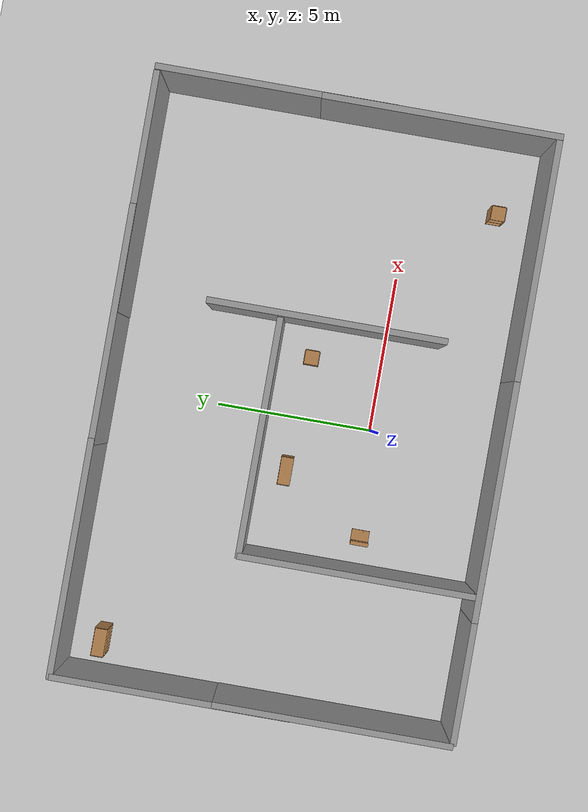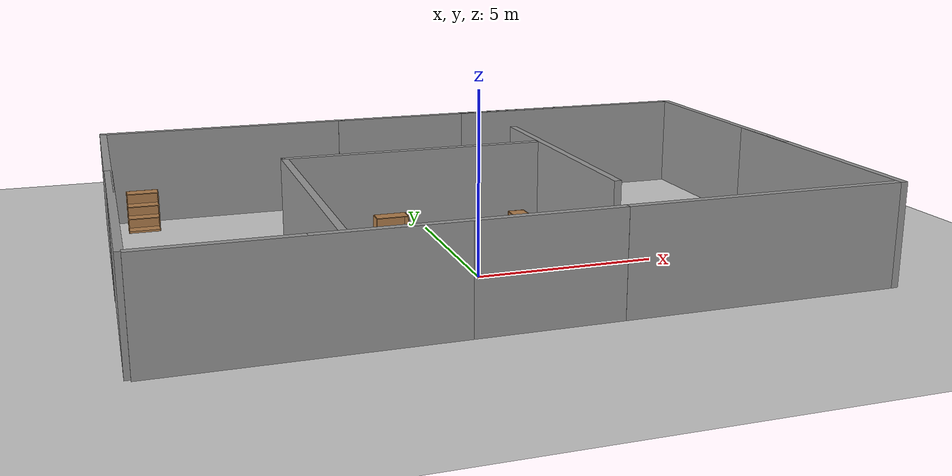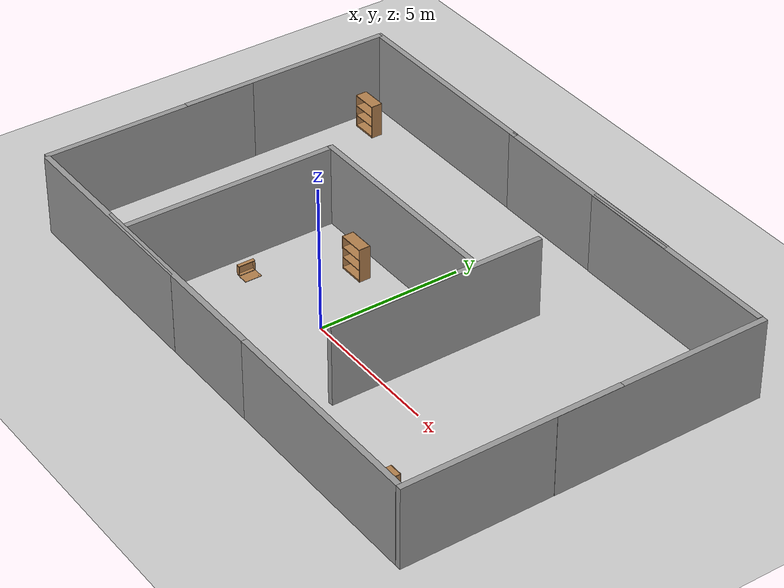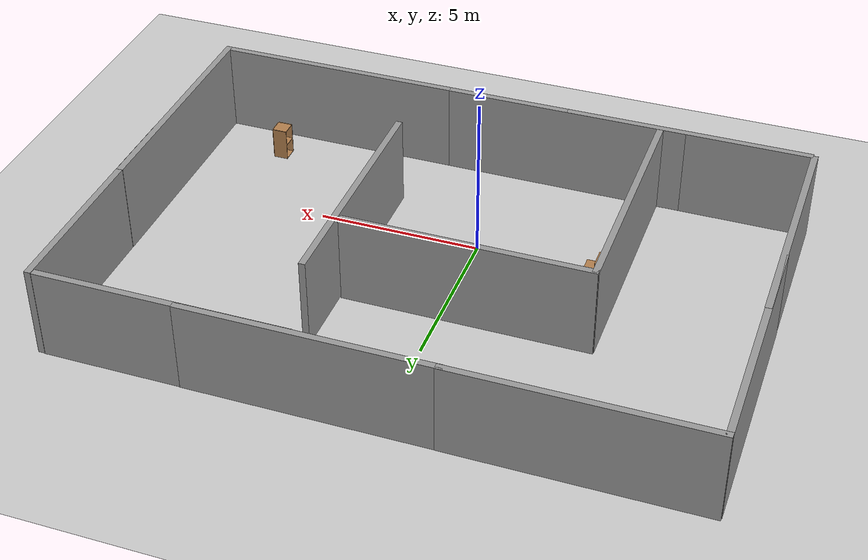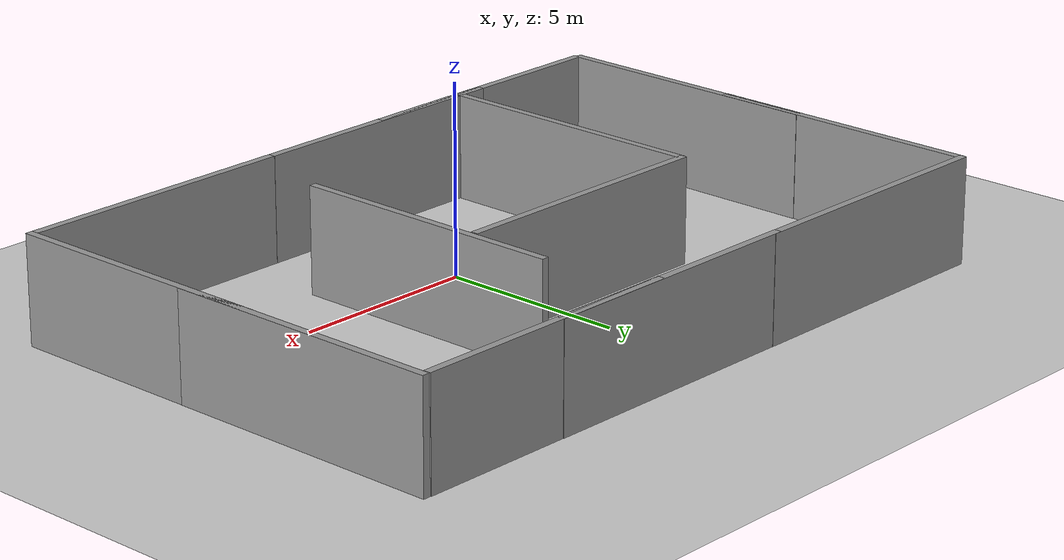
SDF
<sdf version="1.6">
 <world name="default">
  <light name="sun" type="directional">
   <pose>0 0 10 0 -0 0</pose>
   <diffuse>0.8 0.8 0.8 1</diffuse>
   <specular>0.1 0.1 0.1 1</specular>
   <attenuation>
    <range>1000</range>
    <constant>0.9</constant>
    <linear>0.01</linear>
    <quadratic>0.001</quadratic>
   </attenuation>
   <direction>-0.5 0.5 -1</direction>
  </light>
  <model name="ground_plane">
   <static>1</static>
   <link name="link">
    <collision name="collision">
     <geometry><plane><normal>0 0 1</normal><size>100 100</size></plane></geometry>
     <surface><friction><ode><mu>100</mu><mu2>50</mu2></ode></friction></surface>
    </collision>
    <visual name="visual">
     <cast_shadows>0</cast_shadows>
     <geometry><plane><normal>0 0 1</normal><size>100 100</size></plane></geometry>
     <material>
      <script><uri>file://media/materials/scripts/gazebo.material</uri><name>Gazebo/Grey</name></script>
     </material>
    </visual>
   </link>
  </model>
  <gravity>0 0 -9.8</gravity>
  <magnetic_field>6e-06 2.3e-05 -4.2e-05</magnetic_field>
  <atmosphere type="adiabatic"/>
  <physics name="default_physics" default="0" type="ode">
   <max_step_size>0.001</max_step_size>
   <real_time_factor>1</real_time_factor>
   <real_time_update_rate>1000</real_time_update_rate>
  </physics>
  <scene><ambient>0.4 0.4 0.4 1</ambient><background>0.7 0.7 0.7 1</background><shadows>1</shadows></scene>
  <spherical_coordinates>
   <surface_model>EARTH_WGS84</surface_model>
   <latitude_deg>0</latitude_deg>
   <longitude_deg>0</longitude_deg>
   <elevation>0</elevation>
   <heading_deg>0</heading_deg>
  </spherical_coordinates>
  <model name="grey_wall">
   <static>1</static>
   <link name="link">
    <pose>0 0 1.4 0 -0 0</pose>
    <collision name="collision"><geometry><box><size>7.5 0.2 2.8</size></box></geometry></collision>
    <visual name="visual">
     <cast_shadows>0</cast_shadows>
     <geometry><box><size>7.5 0.2 2.8</size></box></geometry>
     <material>
      <script>
       <uri>model://grey_wall/materials/scripts</uri>
       <uri>model://grey_wall/materials/textures</uri>
       <name>vrc/grey_wall</name>
      </script>
     </material>
    </visual>
   </link>
   <pose>-1.47406 -4.04233 0 0 -0 0</pose>
  </model>
  <model name="grey_wall_clone">
   <static>1</static>
   <link name="link">
    <pose>0 0 1.4 0 -0 0</pose>
    <collision name="collision"><geometry><box><size>7.5 0.2 2.8</size></box></geometry></collision>
    <visual name="visual">
     <cast_shadows>0</cast_shadows>
     <geometry><box><size>7.5 0.2 2.8</size></box></geometry>
     <material>
      <script>
       <uri>model://grey_wall/materials/scripts</uri>
       <uri>model://grey_wall/materials/textures</uri>
       <name>vrc/grey_wall</name>
      </script>
     </material>
    </visual>
   </link>
   <pose>6.02688 -4.04394 0 0 -0 0</pose>
  </model>
  <model name="grey_wall_clone_0">
   <static>1</static>
   <link name="link">
    <pose>0 0 1.4 0 -0 0</pose>
    <collision name="collision"><geometry><box><size>7.5 0.2 2.8</size></box></geometry></collision>
    <visual name="visual">
     <cast_shadows>0</cast_shadows>
     <geometry><box><size>7.5 0.2 2.8</size></box></geometry>
     <material>
      <script>
       <uri>model://grey_wall/materials/scripts</uri>
       <uri>model://grey_wall/materials/textures</uri>
       <name>vrc/grey_wall</name>
      </script>
     </material>
    </visual>
   </link>
   <pose>9.87247 -0.390935 0 0 -0 1.57226</pose>
  </model>
  <model name="grey_wall_clone_0_clone">
   <static>1</static>
   <link name="link">
    <pose>0 0 1.4 0 -0 0</pose>
    <collision name="collision"><geometry><box><size>7.5 0.2 2.8</size></box></geometry></collision>
    <visual name="visual">
     <cast_shadows>0</cast_shadows>
     <geometry><box><size>7.5 0.2 2.8</size></box></geometry>
     <material>
      <script>
       <uri>model://grey_wall/materials/scripts</uri>
       <uri>model://grey_wall/materials/textures</uri>
       <name>vrc/grey_wall</name>
      </script>
     </material>
    </visual>
   </link>
   <pose>-9.0691 -0.310244 0 0 -0 1.57226</pose>
  </model>
  <model name="grey_wall_clone_1">
   <static>1</static>
   <link name="link">
    <pose>0 0 1.4 0 -0 0</pose>
    <collision name="collision"><geometry><box><size>7.5 0.2 2.8</size></box></geometry></collision>
    <visual name="visual">
     <cast_shadows>0</cast_shadows>
     <geometry><box><size>7.5 0.2 2.8</size></box></geometry>
     <material>
      <script>
       <uri>model://grey_wall/materials/scripts</uri>
       <uri>model://grey_wall/materials/textures</uri>
       <name>vrc/grey_wall</name>
      </script>
     </material>
    </visual>
   </link>
   <pose>-5.27065 -4.04328 0 0 -0 0</pose>
  </model>
  <model name="grey_wall_clone_0_clone_clone">
   <static>1</static>
   <link name="link">
    <pose>0 0 1.4 0 -0 0</pose>
    <collision name="collision"><geometry><box><size>7.5 0.2 2.8</size></box></geometry></collision>
    <visual name="visual">
     <cast_shadows>0</cast_shadows>
     <geometry><box><size>7.5 0.2 2.8</size></box></geometry>
     <material>
      <script>
       <uri>model://grey_wall/materials/scripts</uri>
       <uri>model://grey_wall/materials/textures</uri>
       <name>vrc/grey_wall</name>
      </script>
     </material>
    </visual>
   </link>
   <pose>-9.08616 4.7458 0 0 -0 1.57226</pose>
  </model>
  <model name="grey_wall_clone_1_clone">
   <static>1</static>
   <link name="link">
    <pose>0 0 1.4 0 -0 0</pose>
    <collision name="collision"><geometry><box><size>7.5 0.2 2.8</size></box></geometry></collision>
    <visual name="visual">
     <cast_shadows>0</cast_shadows>
     <geometry><box><size>7.5 0.2 2.8</size></box></geometry>
     <material>
      <script>
       <uri>model://grey_wall/materials/scripts</uri>
       <uri>model://grey_wall/materials/textures</uri>
       <name>vrc/grey_wall</name>
      </script>
     </material>
    </visual>
   </link>
   <pose>-5.42961 8.47364 0 0 -0 0</pose>
  </model>
  <model name="grey_wall_clone_1_clone_0">
   <static>1</static>
   <link name="link">
    <pose>0 0 1.4 0 -0 0</pose>
    <collision name="collision"><geometry><box><size>7.5 0.2 2.8</size></box></geometry></collision>
    <visual name="visual">
     <cast_shadows>0</cast_shadows>
     <geometry><box><size>7.5 0.2 2.8</size></box></geometry>
     <material>
      <script>
       <uri>model://grey_wall/materials/scripts</uri>
       <uri>model://grey_wall/materials/textures</uri>
       <name>vrc/grey_wall</name>
      </script>
     </material>
    </visual>
   </link>
   <pose>1.8601 8.46546 0 0 -0 0</pose>
  </model>
  <model name="grey_wall_clone_1_clone_1">
   <static>1</static>
   <link name="link">
    <pose>0 0 1.4 0 -0 0</pose>
    <collision name="collision"><geometry><box><size>7.5 0.2 2.8</size></box></geometry></collision>
    <visual name="visual">
     <cast_shadows>0</cast_shadows>
     <geometry><box><size>7.5 0.2 2.8</size></box></geometry>
     <material>
      <script>
       <uri>model://grey_wall/materials/scripts</uri>
       <uri>model://grey_wall/materials/textures</uri>
       <name>vrc/grey_wall</name>
      </script>
     </material>
    </visual>
   </link>
   <pose>5.99942 8.4539 0 0 -0 0</pose>
  </model>
  <model name="grey_wall_clone_0_clone_0">
   <static>1</static>
   <link name="link">
    <pose>0 0 1.4 0 -0 0</pose>
    <collision name="collision"><geometry><box><size>7.5 0.2 2.8</size></box></geometry></collision>
    <visual name="visual">
     <cast_shadows>0</cast_shadows>
     <geometry><box><size>7.5 0.2 2.8</size></box></geometry>
     <material>
      <script>
       <uri>model://grey_wall/materials/scripts</uri>
       <uri>model://grey_wall/materials/textures</uri>
       <name>vrc/grey_wall</name>
      </script>
     </material>
    </visual>
   </link>
   <pose>9.8712 4.79059 0 0 -0 1.57226</pose>
  </model>
  <model name="grey_wall_clone_0_clone_1">
   <static>1</static>
   <link name="link">
    <pose>0 0 1.4 0 -0 0</pose>
    <collision name="collision"><geometry><box><size>7.5 0.2 2.8</size></box></geometry></collision>
    <visual name="visual">
     <cast_shadows>0</cast_shadows>
     <geometry><box><size>7.5 0.2 2.8</size></box></geometry>
     <material>
      <script>
       <uri>model://grey_wall/materials/scripts</uri>
       <uri>model://grey_wall/materials/textures</uri>
       <name>vrc/grey_wall</name>
      </script>
     </material>
    </visual>
   </link>
   <pose>-4.44725 -0.277067 0 0 -0 1.57226</pose>
  </model>
  <model name="grey_wall_clone_1_clone_clone">
   <static>1</static>
   <link name="link">
    <pose>0 0 1.4 0 -0 0</pose>
    <collision name="collision"><geometry><box><size>7.5 0.2 2.8</size></box></geometry></collision>
    <visual name="visual">
     <cast_shadows>0</cast_shadows>
     <geometry><box><size>7.5 0.2 2.8</size></box></geometry>
     <material>
      <script>
       <uri>model://grey_wall/materials/scripts</uri>
       <uri>model://grey_wall/materials/textures</uri>
       <name>vrc/grey_wall</name>
      </script>
     </material>
    </visual>
   </link>
   <pose>-0.783426 3.42654 0 0 -0 0</pose>
  </model>
  <model name="grey_wall_clone_0_clone_clone_0">
   <static>1</static>
   <link name="link">
    <pose>0 0 1.4 0 -0 0</pose>
    <collision name="collision"><geometry><box><size>7.5 0.2 2.8</size></box></geometry></collision>
    <visual name="visual">
     <cast_shadows>0</cast_shadows>
     <geometry><box><size>7.5 0.2 2.8</size></box></geometry>
     <material>
      <script>
       <uri>model://grey_wall/materials/scripts</uri>
       <uri>model://grey_wall/materials/textures</uri>
       <name>vrc/grey_wall</name>
      </script>
     </material>
    </visual>
   </link>
   <pose>3.10508 2.00183 0 0 -0 1.57226</pose>
  </model>
  <model name="cabinet">
   <static>1</static>
   <link name="cabinet_bottom_plate">
    <inertial>
     <pose>0 0 -1 0 -0 0</pose>
     <inertia><ixx>2.05</ixx><ixy>0</ixy><ixz>0</ixz><iyy>2.05</iyy><iyz>0</iyz><izz>2.05</izz></inertia>
     <mass>25</mass>
    </inertial>
    <collision name="cabinet_bottom_plate_geom">
     <pose>0 0 0.01 0 -0 0</pose>
     <geometry><box><size>0.45 0.45 0.02</size></box></geometry>
    </collision>
    <visual name="cabinet_bottom_plate_geom_visual">
     <pose>0 0 0.01 0 -0 0</pose>
     <geometry><box><size>0.45 0.45 0.02</size></box></geometry>
     <material>
      <script><uri>file://media/materials/scripts/gazebo.material</uri><name>Gazebo/Wood</name></script>
     </material>
    </visual>
    <collision name="cabinet_bottom_plate_geom_cabinet_back_plate">
     <pose>0.235 0 0.51 0 -0 0</pose>
     <geometry><box><size>0.02 0.45 1.02</size></box></geometry>
    </collision>
    <visual name="cabinet_bottom_plate_geom_cabinet_back_plate_visual">
     <pose>0.235 0 0.51 0 -0 0</pose>
     <geometry><box><size>0.02 0.45 1.02</size></box></geometry>
     <material>
      <script><uri>file://media/materials/scripts/gazebo.material</uri><name>Gazebo/Wood</name></script>
     </material>
    </visual>
    <collision name="cabinet_bottom_plate_geom_cabinet_left_plate">
     <pose>0 0.235 0.51 0 -0 0</pose>
     <geometry><box><size>0.45 0.02 1.02</size></box></geometry>
    </collision>
    <visual name="cabinet_bottom_plate_geom_cabinet_left_plate_visual">
     <pose>0 0.235 0.51 0 -0 0</pose>
     <geometry><box><size>0.45 0.02 1.02</size></box></geometry>
     <material>
      <script><uri>file://media/materials/scripts/gazebo.material</uri><name>Gazebo/Wood</name></script>
     </material>
    </visual>
    <collision name="cabinet_bottom_plate_geom_cabinet_middle_plate">
     <pose>0 0 0.51 0 -0 0</pose>
     <geometry><box><size>0.45 0.45 0.02</size></box></geometry>
    </collision>
    <visual name="cabinet_bottom_plate_geom_cabinet_middle_plate_visual">
     <pose>0 0 0.51 0 -0 0</pose>
     <geometry><box><size>0.45 0.45 0.02</size></box></geometry>
     <material>
      <script><uri>file://media/materials/scripts/gazebo.material</uri><name>Gazebo/Wood</name></script>
     </material>
    </visual>
    <collision name="cabinet_bottom_plate_geom_cabinet_right_plate">
     <pose>0 -0.235 0.51 0 -0 0</pose>
     <geometry><box><size>0.45 0.02 1.02</size></box></geometry>
    </collision>
    <visual name="cabinet_bottom_plate_geom_cabinet_right_plate_visual">
     <pose>0 -0.235 0.51 0 -0 0</pose>
     <geometry><box><size>0.45 0.02 1.02</size></box></geometry>
     <material>
      <script><uri>file://media/materials/scripts/gazebo.material</uri><name>Gazebo/Wood</name></script>
     </material>
    </visual>
    <collision name="cabinet_bottom_plate_geom_cabinet_top_plate">
     <pose>0 0 1.01 0 -0 0</pose>
     <geometry><box><size>0.45 0.45 0.02</size></box></geometry>
    </collision>
    <visual name="cabinet_bottom_plate_geom_cabinet_top_plate_visual">
     <pose>0 0 1.01 0 -0 0</pose>
     <geometry><box><size>0.45 0.45 0.02</size></box></geometry>
     <material>
      <script><uri>file://media/materials/scripts/gazebo.material</uri><name>Gazebo/Wood</name></script>
     </material>
    </visual>
   </link>
   <pose>1.97716 2.27018 0 0 -0 0</pose>
  </model>
  <model name="wooden_case">
   <link name="base">
    <pose>0 0 0.024 0 -0 0</pose>
    <inertial>
     <pose>-0.022184 0 0.171592 0 -0 0</pose>
     <mass>3.96264</mass>
     <inertia>
      <ixx>0.213536</ixx>
      <ixy>0</ixy>
      <ixz>0.000779377</ixz>
      <iyy>0.0708943</iyy>
      <iyz>0</iyz>
      <izz>0.154604</izz>
     </inertia>
    </inertial>
    <collision name="collision_back">
     <pose>-0.053975 0 0.1778 0 -0 0</pose>
     <geometry><box><size>0.01905 0.5461 0.3175</size></box></geometry>
     <surface>
      <contact>
       <poissons_ratio>0.347</poissons_ratio>
       <elastic_modulus>8.8e+09</elastic_modulus>
       <ode><kp>100000</kp><kd>100</kd><max_vel>100</max_vel><min_depth>0.001</min_depth></ode>
      </contact>
      <friction>
       <torsional>
        <coefficient>1</coefficient>
        <use_patch_radius>0</use_patch_radius>
        <surface_radius>0.01</surface_radius>
       </torsional>
      </friction>
     </surface>
    </collision>
    <visual name="visual_back">
     <pose>-0.053975 0 0.1778 0 -0 0</pose>
     <geometry><box><size>0.01905 0.5461 0.3175</size></box></geometry>
     <material>
      <script><uri>file://media/materials/scripts/gazebo.material</uri><name>Gazebo/Wood</name></script>
     </material>
    </visual>
    <collision name="collision_bottom">
     <pose>0 0 0.009525 0 -0 0</pose>
     <geometry><box><size>0.127 0.5842 0.01905</size></box></geometry>
     <surface>
      <contact>
       <poissons_ratio>0.347</poissons_ratio>
       <elastic_modulus>8.8e+09</elastic_modulus>
       <ode><kp>100000</kp><kd>100</kd><max_vel>100</max_vel><min_depth>0.001</min_depth></ode>
      </contact>
      <friction>
       <torsional>
        <coefficient>1</coefficient>
        <use_patch_radius>0</use_patch_radius>
        <surface_radius>0.01</surface_radius>
       </torsional>
      </friction>
     </surface>
    </collision>
    <visual name="visual_bottom">
     <pose>0 0 0.009525 0 -0 0</pose>
     <geometry><box><size>0.127 0.5842 0.01905</size></box></geometry>
     <material>
      <script><uri>file://media/materials/scripts/gazebo.material</uri><name>Gazebo/Wood</name></script>
     </material>
    </visual>
    <collision name="collision_top">
     <pose>0 0 0.346075 0 -0 0</pose>
     <geometry><box><size>0.127 0.5842 0.01905</size></box></geometry>
     <surface>
      <contact>
       <poissons_ratio>0.347</poissons_ratio>
       <elastic_modulus>8.8e+09</elastic_modulus>
       <ode><kp>100000</kp><kd>100</kd><max_vel>100</max_vel><min_depth>0.001</min_depth></ode>
      </contact>
      <friction>
       <torsional>
        <coefficient>1</coefficient>
        <use_patch_radius>0</use_patch_radius>
        <surface_radius>0.01</surface_radius>
       </torsional>
      </friction>
     </surface>
    </collision>
    <visual name="visual_top">
     <pose>0 0 0.346075 0 -0 0</pose>
     <geometry><box><size>0.127 0.5842 0.01905</size></box></geometry>
     <material>
      <script><uri>file://media/materials/scripts/gazebo.material</uri><name>Gazebo/Wood</name></script>
     </material>
    </visual>
    <collision name="collision_left">
     <pose>0 -0.282575 0.1778 0 -0 0</pose>
     <geometry><box><size>0.127 0.01905 0.3175</size></box></geometry>
     <surface>
      <contact>
       <poissons_ratio>0.347</poissons_ratio>
       <elastic_modulus>8.8e+09</elastic_modulus>
       <ode><kp>100000</kp><kd>100</kd><max_vel>100</max_vel><min_depth>0.001</min_depth></ode>
      </contact>
      <friction>
       <torsional>
        <coefficient>1</coefficient>
        <use_patch_radius>0</use_patch_radius>
        <surface_radius>0.01</surface_radius>
       </torsional>
      </friction>
     </surface>
    </collision>
    <visual name="visual_left">
     <pose>0 -0.282575 0.1778 0 -0 0</pose>
     <geometry><box><size>0.127 0.01905 0.3175</size></box></geometry>
     <material>
      <script><uri>file://media/materials/scripts/gazebo.material</uri><name>Gazebo/Wood</name></script>
     </material>
    </visual>
    <collision name="collision_right">
     <pose>0 0.282575 0.1778 0 -0 0</pose>
     <geometry><box><size>0.127 0.01905 0.3175</size></box></geometry>
     <surface>
      <contact>
       <poissons_ratio>0.347</poissons_ratio>
       <elastic_modulus>8.8e+09</elastic_modulus>
       <ode><kp>100000</kp><kd>100</kd><max_vel>100</max_vel><min_depth>0.001</min_depth></ode>
      </contact>
      <friction>
       <torsional>
        <coefficient>1</coefficient>
        <use_patch_radius>0</use_patch_radius>
        <surface_radius>0.01</surface_radius>
       </torsional>
      </friction>
     </surface>
    </collision>
    <visual name="visual_right">
     <pose>0 0.282575 0.1778 0 -0 0</pose>
     <geometry><box><size>0.127 0.01905 0.3175</size></box></geometry>
     <material>
      <script><uri>file://media/materials/scripts/gazebo.material</uri><name>Gazebo/Wood</name></script>
     </material>
    </visual>
    <collision name="collision_block_left">
     <pose>0.0095 -0.2151 -0.012 0 -0 0</pose>
     <geometry><box><size>0.108 0.05 0.024</size></box></geometry>
     <surface>
      <contact>
       <poissons_ratio>0.347</poissons_ratio>
       <elastic_modulus>8.8e+09</elastic_modulus>
       <ode><kp>100000</kp><kd>100</kd><max_vel>100</max_vel><min_depth>0.001</min_depth></ode>
      </contact>
      <friction>
       <torsional>
        <coefficient>1</coefficient>
        <use_patch_radius>0</use_patch_radius>
        <surface_radius>0.01</surface_radius>
       </torsional>
      </friction>
     </surface>
    </collision>
    <visual name="visual_block_left">
     <pose>0.0095 -0.2151 -0.012 0 -0 0</pose>
     <geometry><box><size>0.108 0.05 0.024</size></box></geometry>
     <material>
      <script><uri>file://media/materials/scripts/gazebo.material</uri><name>Gazebo/Wood</name></script>
     </material>
    </visual>
    <collision name="collision_block_right">
     <pose>0.0095 0.2151 -0.012 0 -0 0</pose>
     <geometry><box><size>0.108 0.05 0.024</size></box></geometry>
     <surface>
      <contact>
       <poissons_ratio>0.347</poissons_ratio>
       <elastic_modulus>8.8e+09</elastic_modulus>
       <ode><kp>100000</kp><kd>100</kd><max_vel>100</max_vel><min_depth>0.001</min_depth></ode>
      </contact>
      <friction>
       <torsional>
        <coefficient>1</coefficient>
        <use_patch_radius>0</use_patch_radius>
        <surface_radius>0.01</surface_radius>
       </torsional>
      </friction>
     </surface>
    </collision>
    <visual name="visual_block_right">
     <pose>0.0095 0.2151 -0.012 0 -0 0</pose>
     <geometry><box><size>0.108 0.05 0.024</size></box></geometry>
     <material>
      <script><uri>file://media/materials/scripts/gazebo.material</uri><name>Gazebo/Wood</name></script>
     </material>
    </visual>
   </link>
   <link name="lid">
    <pose>0.243775 0 0.009525 0 -0 0</pose>
    <inertial>
     <mass>1.97874</mass>
     <inertia>
      <ixx>0.0563367</ixx>
      <ixy>0</ixy>
      <ixz>0</ixz>
      <iyy>0.020911</iyy>
      <iyz>0</iyz>
      <izz>0.0771281</izz>
     </inertia>
    </inertial>
    <collision name="collision">
     <geometry><box><size>0.3556 0.5842 0.01905</size></box></geometry>
     <surface>
      <contact>
       <poissons_ratio>0.347</poissons_ratio>
       <elastic_modulus>8.8e+09</elastic_modulus>
       <ode><kp>100000</kp><kd>100</kd><max_vel>100</max_vel><min_depth>0.001</min_depth></ode>
      </contact>
      <friction>
       <torsional>
        <coefficient>1</coefficient>
        <use_patch_radius>0</use_patch_radius>
        <surface_radius>0.01</surface_radius>
       </torsional>
      </friction>
     </surface>
    </collision>
    <visual name="visual">
     <geometry><box><size>0.3556 0.5842 0.01905</size></box></geometry>
     <material>
      <script><uri>file://media/materials/scripts/gazebo.material</uri><name>Gazebo/Wood</name></script>
     </material>
    </visual>
    <visual name="tee_nut_1">
     <pose>0.122 -0.216 0 0 -0 0</pose>
     <geometry><cylinder><radius>0.00635</radius><length>0.0192405</length></cylinder></geometry>
     <material>
      <script><uri>file://media/materials/scripts/gazebo.material</uri><name>Gazebo/Grey</name></script>
     </material>
    </visual>
    <visual name="tee_nut_2">
     <pose>0.122 -0.088 0 0 -0 0</pose>
     <geometry><cylinder><radius>0.00635</radius><length>0.0192405</length></cylinder></geometry>
     <material>
      <script><uri>file://media/materials/scripts/gazebo.material</uri><name>Gazebo/Grey</name></script>
     </material>
    </visual>
    <visual name="tee_nut_3">
     <pose>0.122 0.088 0 0 -0 0</pose>
     <geometry><cylinder><radius>0.00635</radius><length>0.0192405</length></cylinder></geometry>
     <material>
      <script><uri>file://media/materials/scripts/gazebo.material</uri><name>Gazebo/Grey</name></script>
     </material>
    </visual>
    <visual name="tee_nut_4">
     <pose>0.122 0.216 0 0 -0 0</pose>
     <geometry><cylinder><radius>0.00635</radius><length>0.0192405</length></cylinder></geometry>
     <material>
      <script><uri>file://media/materials/scripts/gazebo.material</uri><name>Gazebo/Grey</name></script>
     </material>
    </visual>
   </link>
   <joint name="lid_hinge" type="revolute">
    <pose>-0.1778 0 0.01905 0 -0 0</pose>
    <parent>base</parent>
    <child>lid</child>
    <axis>
     <xyz>0 1 0</xyz>
     <limit><upper>0.523599</upper><lower>-1.5708</lower></limit>
     <use_parent_model_frame>0</use_parent_model_frame>
     <dynamics><spring_reference>0</spring_reference><spring_stiffness>0</spring_stiffness></dynamics>
    </axis>
   </joint>
   <pose>-3.67411 -0.290462 -0.001057 0 -0.000429 0</pose>
  </model>
  <model name="bookshelf">
   <static>1</static>
   <link name="link">
    <inertial><mass>1</mass></inertial>
    <collision name="back">
     <pose>0 0.005 0.6 0 -0 0</pose>
     <geometry><box><size>0.9 0.01 1.2</size></box></geometry>
    </collision>
    <visual name="visual1">
     <pose>0 0.005 0.6 0 -0 0</pose>
     <geometry><box><size>0.9 0.01 1.2</size></box></geometry>
     <material>
      <script><uri>file://media/materials/scripts/gazebo.material</uri><name>Gazebo/Wood</name></script>
     </material>
    </visual>
    <collision name="left_side">
     <pose>0.45 -0.195 0.6 0 -0 0</pose>
     <geometry><box><size>0.02 0.4 1.2</size></box></geometry>
    </collision>
    <visual name="visual2">
     <pose>0.45 -0.195 0.6 0 -0 0</pose>
     <geometry><box><size>0.02 0.4 1.2</size></box></geometry>
     <material>
      <script><uri>file://media/materials/scripts/gazebo.material</uri><name>Gazebo/Wood</name></script>
     </material>
    </visual>
    <collision name="right_side">
     <pose>-0.45 -0.195 0.6 0 -0 0</pose>
     <geometry><box><size>0.02 0.4 1.2</size></box></geometry>
    </collision>
    <visual name="visual3">
     <pose>-0.45 -0.195 0.6 0 -0 0</pose>
     <geometry><box><size>0.02 0.4 1.2</size></box></geometry>
     <material>
      <script><uri>file://media/materials/scripts/gazebo.material</uri><name>Gazebo/Wood</name></script>
     </material>
    </visual>
    <collision name="bottom">
     <pose>0 -0.195 0.03 0 -0 0</pose>
     <geometry><box><size>0.88 0.4 0.06</size></box></geometry>
    </collision>
    <visual name="visual4">
     <pose>0 -0.195 0.03 0 -0 0</pose>
     <geometry><box><size>0.88 0.4 0.06</size></box></geometry>
     <material>
      <script><uri>file://media/materials/scripts/gazebo.material</uri><name>Gazebo/Wood</name></script>
     </material>
    </visual>
    <collision name="top">
     <pose>0 -0.195 1.19 0 -0 0</pose>
     <geometry><box><size>0.88 0.4 0.02</size></box></geometry>
    </collision>
    <visual name="visual5">
     <pose>0 -0.195 1.19 0 -0 0</pose>
     <geometry><box><size>0.88 0.4 0.02</size></box></geometry>
     <material>
      <script><uri>file://media/materials/scripts/gazebo.material</uri><name>Gazebo/Wood</name></script>
     </material>
    </visual>
    <collision name="low_shelf">
     <pose>0 -0.195 0.43 0 -0 0</pose>
     <geometry><box><size>0.88 0.4 0.02</size></box></geometry>
    </collision>
    <visual name="visual6">
     <pose>0 -0.195 0.43 0 -0 0</pose>
     <geometry><box><size>0.88 0.4 0.02</size></box></geometry>
     <material>
      <script><uri>file://media/materials/scripts/gazebo.material</uri><name>Gazebo/Wood</name></script>
     </material>
    </visual>
    <collision name="high_shelf">
     <pose>0 -0.195 0.8 0 -0 0</pose>
     <geometry><box><size>0.88 0.4 0.02</size></box></geometry>
    </collision>
    <visual name="visual7">
     <pose>0 -0.195 0.8 0 -0 0</pose>
     <geometry><box><size>0.88 0.4 0.02</size></box></geometry>
     <material>
      <script><uri>file://media/materials/scripts/gazebo.material</uri><name>Gazebo/Wood</name></script>
     </material>
    </visual>
   </link>
   <pose>-8.12097 7.5496 0 0 -0 0</pose>
  </model>
  <model name="bookshelf_0">
   <static>1</static>
   <link name="link">
    <inertial><mass>1</mass></inertial>
    <collision name="back">
     <pose>0 0.005 0.6 0 -0 0</pose>
     <geometry><box><size>0.9 0.01 1.2</size></box></geometry>
    </collision>
    <visual name="visual1">
     <pose>0 0.005 0.6 0 -0 0</pose>
     <geometry><box><size>0.9 0.01 1.2</size></box></geometry>
     <material>
      <script><uri>file://media/materials/scripts/gazebo.material</uri><name>Gazebo/Wood</name></script>
     </material>
    </visual>
    <collision name="left_side">
     <pose>0.45 -0.195 0.6 0 -0 0</pose>
     <geometry><box><size>0.02 0.4 1.2</size></box></geometry>
    </collision>
    <visual name="visual2">
     <pose>0.45 -0.195 0.6 0 -0 0</pose>
     <geometry><box><size>0.02 0.4 1.2</size></box></geometry>
     <material>
      <script><uri>file://media/materials/scripts/gazebo.material</uri><name>Gazebo/Wood</name></script>
     </material>
    </visual>
    <collision name="right_side">
     <pose>-0.45 -0.195 0.6 0 -0 0</pose>
     <geometry><box><size>0.02 0.4 1.2</size></box></geometry>
    </collision>
    <visual name="visual3">
     <pose>-0.45 -0.195 0.6 0 -0 0</pose>
     <geometry><box><size>0.02 0.4 1.2</size></box></geometry>
     <material>
      <script><uri>file://media/materials/scripts/gazebo.material</uri><name>Gazebo/Wood</name></script>
     </material>
    </visual>
    <collision name="bottom">
     <pose>0 -0.195 0.03 0 -0 0</pose>
     <geometry><box><size>0.88 0.4 0.06</size></box></geometry>
    </collision>
    <visual name="visual4">
     <pose>0 -0.195 0.03 0 -0 0</pose>
     <geometry><box><size>0.88 0.4 0.06</size></box></geometry>
     <material>
      <script><uri>file://media/materials/scripts/gazebo.material</uri><name>Gazebo/Wood</name></script>
     </material>
    </visual>
    <collision name="top">
     <pose>0 -0.195 1.19 0 -0 0</pose>
     <geometry><box><size>0.88 0.4 0.02</size></box></geometry>
    </collision>
    <visual name="visual5">
     <pose>0 -0.195 1.19 0 -0 0</pose>
     <geometry><box><size>0.88 0.4 0.02</size></box></geometry>
     <material>
      <script><uri>file://media/materials/scripts/gazebo.material</uri><name>Gazebo/Wood</name></script>
     </material>
    </visual>
    <collision name="low_shelf">
     <pose>0 -0.195 0.43 0 -0 0</pose>
     <geometry><box><size>0.88 0.4 0.02</size></box></geometry>
    </collision>
    <visual name="visual6">
     <pose>0 -0.195 0.43 0 -0 0</pose>
     <geometry><box><size>0.88 0.4 0.02</size></box></geometry>
     <material>
      <script><uri>file://media/materials/scripts/gazebo.material</uri><name>Gazebo/Wood</name></script>
     </material>
    </visual>
    <collision name="high_shelf">
     <pose>0 -0.195 0.8 0 -0 0</pose>
     <geometry><box><size>0.88 0.4 0.02</size></box></geometry>
    </collision>
    <visual name="visual7">
     <pose>0 -0.195 0.8 0 -0 0</pose>
     <geometry><box><size>0.88 0.4 0.02</size></box></geometry>
     <material>
      <script><uri>file://media/materials/scripts/gazebo.material</uri><name>Gazebo/Wood</name></script>
     </material>
    </visual>
   </link>
   <pose>-1.72253 2.6619 0 0 -0 0</pose>
  </model>
  <model name="cabinet_clone">
   <static>1</static>
   <link name="cabinet_bottom_plate">
    <inertial>
     <pose>0 0 -1 0 -0 0</pose>
     <inertia><ixx>2.05</ixx><ixy>0</ixy><ixz>0</ixz><iyy>2.05</iyy><iyz>0</iyz><izz>2.05</izz></inertia>
     <mass>25</mass>
    </inertial>
    <collision name="cabinet_bottom_plate_geom">
     <pose>0 0 0.01 0 -0 0</pose>
     <geometry><box><size>0.45 0.45 0.02</size></box></geometry>
    </collision>
    <visual name="cabinet_bottom_plate_geom_visual">
     <pose>0 0 0.01 0 -0 0</pose>
     <geometry><box><size>0.45 0.45 0.02</size></box></geometry>
     <material>
      <script><uri>file://media/materials/scripts/gazebo.material</uri><name>Gazebo/Wood</name></script>
     </material>
    </visual>
    <collision name="cabinet_bottom_plate_geom_cabinet_back_plate">
     <pose>0.235 0 0.51 0 -0 0</pose>
     <geometry><box><size>0.02 0.45 1.02</size></box></geometry>
    </collision>
    <visual name="cabinet_bottom_plate_geom_cabinet_back_plate_visual">
     <pose>0.235 0 0.51 0 -0 0</pose>
     <geometry><box><size>0.02 0.45 1.02</size></box></geometry>
     <material>
      <script><uri>file://media/materials/scripts/gazebo.material</uri><name>Gazebo/Wood</name></script>
     </material>
    </visual>
    <collision name="cabinet_bottom_plate_geom_cabinet_left_plate">
     <pose>0 0.235 0.51 0 -0 0</pose>
     <geometry><box><size>0.45 0.02 1.02</size></box></geometry>
    </collision>
    <visual name="cabinet_bottom_plate_geom_cabinet_left_plate_visual">
     <pose>0 0.235 0.51 0 -0 0</pose>
     <geometry><box><size>0.45 0.02 1.02</size></box></geometry>
     <material>
      <script><uri>file://media/materials/scripts/gazebo.material</uri><name>Gazebo/Wood</name></script>
     </material>
    </visual>
    <collision name="cabinet_bottom_plate_geom_cabinet_middle_plate">
     <pose>0 0 0.51 0 -0 0</pose>
     <geometry><box><size>0.45 0.45 0.02</size></box></geometry>
    </collision>
    <visual name="cabinet_bottom_plate_geom_cabinet_middle_plate_visual">
     <pose>0 0 0.51 0 -0 0</pose>
     <geometry><box><size>0.45 0.45 0.02</size></box></geometry>
     <material>
      <script><uri>file://media/materials/scripts/gazebo.material</uri><name>Gazebo/Wood</name></script>
     </material>
    </visual>
    <collision name="cabinet_bottom_plate_geom_cabinet_right_plate">
     <pose>0 -0.235 0.51 0 -0 0</pose>
     <geometry><box><size>0.45 0.02 1.02</size></box></geometry>
    </collision>
    <visual name="cabinet_bottom_plate_geom_cabinet_right_plate_visual">
     <pose>0 -0.235 0.51 0 -0 0</pose>
     <geometry><box><size>0.45 0.02 1.02</size></box></geometry>
     <material>
      <script><uri>file://media/materials/scripts/gazebo.material</uri><name>Gazebo/Wood</name></script>
     </material>
    </visual>
    <collision name="cabinet_bottom_plate_geom_cabinet_top_plate">
     <pose>0 0 1.01 0 -0 0</pose>
     <geometry><box><size>0.45 0.45 0.02</size></box></geometry>
    </collision>
    <visual name="cabinet_bottom_plate_geom_cabinet_top_plate_visual">
     <pose>0 0 1.01 0 -0 0</pose>
     <geometry><box><size>0.45 0.45 0.02</size></box></geometry>
     <material>
      <script><uri>file://media/materials/scripts/gazebo.material</uri><name>Gazebo/Wood</name></script>
     </material>
    </visual>
   </link>
   <pose>7.53921 -2.79838 0 0 -0 0</pose>
  </model>
 </world>
</sdf>
